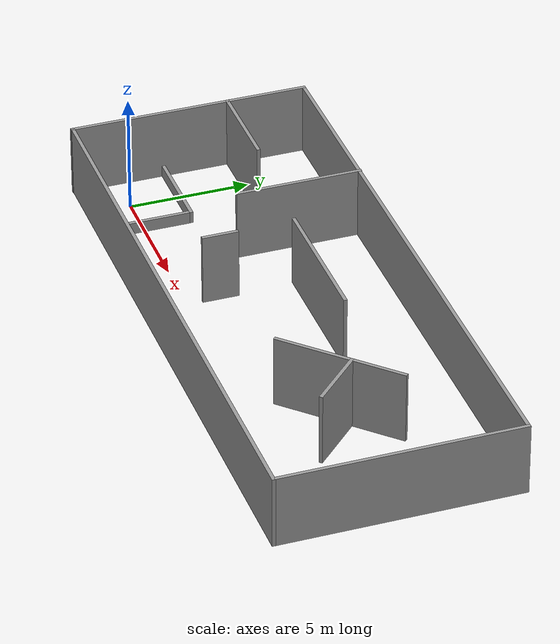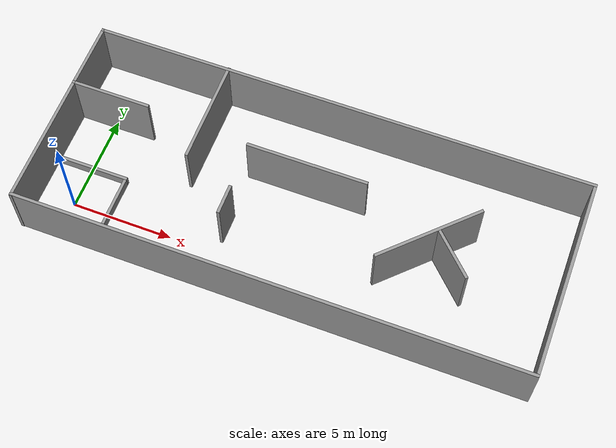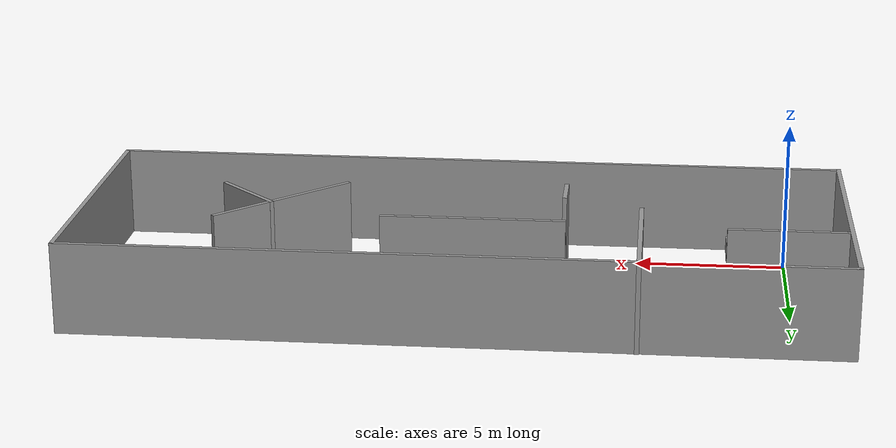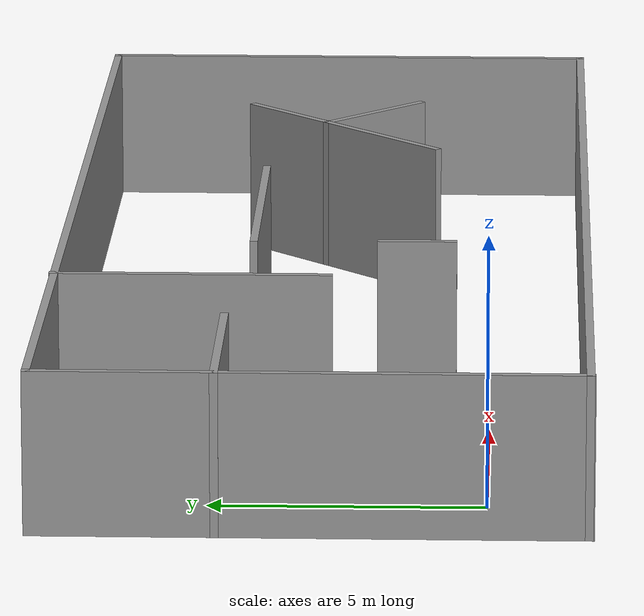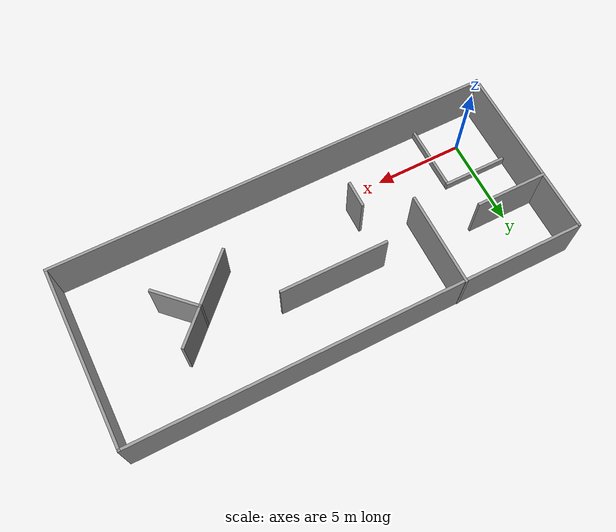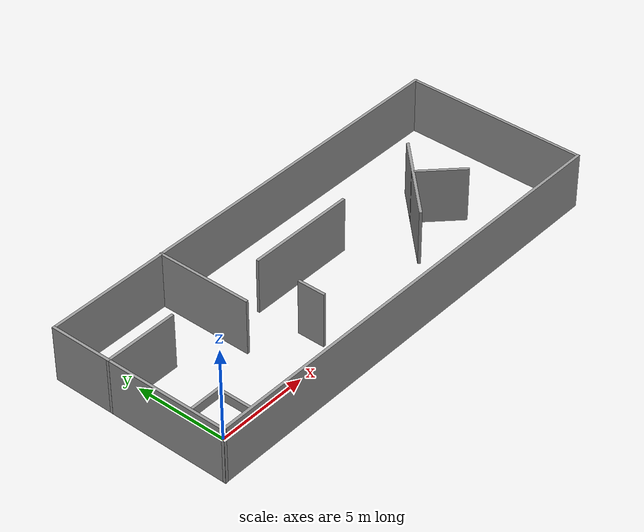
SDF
<?xml version='1.0'?>
<sdf version='1.6'>
  <model name='explore_map'>
    <pose frame=''>10.592 3.1325 0 0 -0 0</pose>
    <link name='Wall_26'>
      <collision name='Wall_26_Collision'>
        <geometry>
          <box>
            <size>10.018 0.15 3</size>
          </box>
        </geometry>
        <pose frame=''>0 0 1.5 0 -0 0</pose>
      </collision>
      <visual name='Wall_26_Visual'>
        <pose frame=''>0 0 1.5 0 -0 0</pose>
        <geometry>
          <box>
            <size>10.018 0.15 3</size>
          </box>
        </geometry>
        <material>
          <script>
            <uri>file://media/materials/scripts/gazebo.material</uri>
            <name>Gazebo/Grey</name>
          </script>
          <ambient>1 1 1 1</ambient>
        </material>
        <meta>
          <layer>0</layer>
        </meta>
      </visual>
      <pose frame=''>-12.424 -0.012503 0 0 -0 1.5708</pose>
    </link>
    <link name='Wall_29'>
      <collision name='Wall_29_Collision'>
        <geometry>
          <box>
            <size>25 0.15 3</size>
          </box>
        </geometry>
        <pose frame=''>0 0 1.5 0 -0 0</pose>
      </collision>
      <visual name='Wall_29_Visual'>
        <pose frame=''>0 0 1.5 0 -0 0</pose>
        <geometry>
          <box>
            <size>25 0.15 3</size>
          </box>
        </geometry>
        <material>
          <script>
            <uri>file://media/materials/scripts/gazebo.material</uri>
            <name>Gazebo/Grey</name>
          </script>
          <ambient>1 1 1 1</ambient>
        </material>
        <meta>
          <layer>0</layer>
        </meta>
      </visual>
      <pose frame=''>0.001 4.9215 0 0 -0 0</pose>
    </link>
    <link name='Wall_31'>
      <collision name='Wall_31_Collision'>
        <geometry>
          <box>
            <size>10 0.15 3</size>
          </box>
        </geometry>
        <pose frame=''>0 0 1.5 0 -0 0</pose>
      </collision>
      <visual name='Wall_31_Visual'>
        <pose frame=''>0 0 1.5 0 -0 0</pose>
        <geometry>
          <box>
            <size>10 0.15 3</size>
          </box>
        </geometry>
        <material>
          <script>
            <uri>file://media/materials/scripts/gazebo.material</uri>
            <name>Gazebo/Grey</name>
          </script>
          <ambient>1 1 1 1</ambient>
        </material>
        <meta>
          <layer>0</layer>
        </meta>
      </visual>
      <pose frame=''>12.426 -0.003503 0 0 -0 -1.5708</pose>
    </link>
    <link name='Wall_32'>
      <collision name='Wall_32_Collision'>
        <geometry>
          <box>
            <size>25 0.15 3</size>
          </box>
        </geometry>
        <pose frame=''>0 0 1.5 0 -0 0</pose>
      </collision>
      <visual name='Wall_32_Visual'>
        <pose frame=''>0 0 1.5 0 -0 0</pose>
        <geometry>
          <box>
            <size>25 0.15 3</size>
          </box>
        </geometry>
        <material>
          <script>
            <uri>file://media/materials/scripts/gazebo.material</uri>
            <name>Gazebo/Grey</name>
          </script>
          <ambient>1 1 1 1</ambient>
        </material>
        <meta>
          <layer>0</layer>
        </meta>
      </visual>
      <pose frame=''>0.001 -4.9285 0 0 -0 3.14159</pose>
    </link>
    <link name='Wall_35'>
      <collision name='Wall_35_Collision'>
        <geometry>
          <box>
            <size>3.75 0.15 0.5</size>
          </box>
        </geometry>
        <pose frame=''>0 0 0.25 0 -0 0</pose>
      </collision>
      <visual name='Wall_35_Visual'>
        <pose frame=''>0 0 0.25 0 -0 0</pose>
        <geometry>
          <box>
            <size>3.75 0.15 0.5</size>
          </box>
        </geometry>
        <material>
          <script>
            <uri>file://media/materials/scripts/gazebo.material</uri>
            <name>Gazebo/Grey</name>
          </script>
          <ambient>1 1 1 1</ambient>
        </material>
        <meta>
          <layer>0</layer>
        </meta>
      </visual>
      <pose frame=''>-10.556 -1.1605 0 0 -0 3.14159</pose>
    </link>
    <link name='Wall_39'>
      <collision name='Wall_39_Collision'>
        <geometry>
          <box>
            <size>3.75 0.15 0.5</size>
          </box>
        </geometry>
        <pose frame=''>0 0 0.25 0 -0 0</pose>
      </collision>
      <visual name='Wall_39_Visual'>
        <pose frame=''>0 0 0.25 0 -0 0</pose>
        <geometry>
          <box>
            <size>3.75 0.15 0.5</size>
          </box>
        </geometry>
        <material>
          <script>
            <uri>file://media/materials/scripts/gazebo.material</uri>
            <name>Gazebo/Grey</name>
          </script>
          <ambient>1 1 1 1</ambient>
        </material>
        <meta>
          <layer>0</layer>
        </meta>
      </visual>
      <pose frame=''>-8.75 -3.1085 0 0 -0 1.5708</pose>
    </link>
    <link name='Wall_41'>
      <collision name='Wall_41_Collision'>
        <geometry>
          <box>
            <size>4 0.15 3</size>
          </box>
        </geometry>
        <pose frame=''>0 0 1.5 0 -0 0</pose>
      </collision>
      <visual name='Wall_41_Visual'>
        <pose frame=''>0 0 1.5 0 -0 0</pose>
        <geometry>
          <box>
            <size>4 0.15 3</size>
          </box>
        </geometry>
        <material>
          <script>
            <uri>file://media/materials/scripts/gazebo.material</uri>
            <name>Gazebo/Grey</name>
          </script>
          <ambient>1 1 1 1</ambient>
        </material>
        <meta>
          <layer>0</layer>
        </meta>
      </visual>
      <pose frame=''>-10.501 1.6385 0 0 -0 0</pose>
    </link>
    <link name='Wall_43'>
      <collision name='Wall_43_Collision'>
        <geometry>
          <box>
            <size>5.25 0.15 3</size>
          </box>
        </geometry>
        <pose frame=''>0 0 1.5 0 -0 0</pose>
      </collision>
      <visual name='Wall_43_Visual'>
        <pose frame=''>0 0 1.5 0 -0 0</pose>
        <geometry>
          <box>
            <size>5.25 0.15 3</size>
          </box>
        </geometry>
        <material>
          <script>
            <uri>file://media/materials/scripts/gazebo.material</uri>
            <name>Gazebo/Grey</name>
          </script>
          <ambient>1 1 1 1</ambient>
        </material>
        <meta>
          <layer>0</layer>
        </meta>
      </visual>
      <pose frame=''>-5.765 2.3965 0 0 -0 -1.5708</pose>
    </link>
    <link name='Wall_45'>
      <collision name='Wall_45_Collision'>
        <geometry>
          <box>
            <size>1.5 0.15 3</size>
          </box>
        </geometry>
        <pose frame=''>0 0 1.5 0 -0 0</pose>
      </collision>
      <visual name='Wall_45_Visual'>
        <pose frame=''>0 0 1.5 0 -0 0</pose>
        <geometry>
          <box>
            <size>1.5 0.15 3</size>
          </box>
        </geometry>
        <material>
          <script>
            <uri>file://media/materials/scripts/gazebo.material</uri>
            <name>Gazebo/Grey</name>
          </script>
          <ambient>1 1 1 1</ambient>
        </material>
        <meta>
          <layer>0</layer>
        </meta>
      </visual>
      <pose frame=''>-3.22 -1.7425 0 0 -0 -1.5708</pose>
    </link>
    <link name='Wall_47'>
      <collision name='Wall_47_Collision'>
        <geometry>
          <box>
            <size>6 0.15 3</size>
          </box>
        </geometry>
        <pose frame=''>0 0 1.5 0 -0 0</pose>
      </collision>
      <visual name='Wall_47_Visual'>
        <pose frame=''>0 0 1.5 0 -0 0</pose>
        <geometry>
          <box>
            <size>6 0.15 3</size>
          </box>
        </geometry>
        <material>
          <script>
            <uri>file://media/materials/scripts/gazebo.material</uri>
            <name>Gazebo/Grey</name>
          </script>
          <ambient>1 1 1 1</ambient>
        </material>
        <meta>
          <layer>0</layer>
        </meta>
      </visual>
      <pose frame=''>-0.365 1.3375 0 0 -0 0</pose>
    </link>
    <link name='Wall_49'>
      <collision name='Wall_49_Collision'>
        <geometry>
          <box>
            <size>5.5 0.15 3</size>
          </box>
        </geometry>
        <pose frame=''>0 0 1.5 0 -0 0</pose>
      </collision>
      <visual name='Wall_49_Visual'>
        <pose frame=''>0 0 1.5 0 -0 0</pose>
        <geometry>
          <box>
            <size>5.5 0.15 3</size>
          </box>
        </geometry>
        <material>
          <script>
            <uri>file://media/materials/scripts/gazebo.material</uri>
            <name>Gazebo/Grey</name>
          </script>
          <ambient>1 1 1 1</ambient>
        </material>
        <meta>
          <layer>0</layer>
        </meta>
      </visual>
      <pose frame=''>6.0535 -0.090003 0 0 -0 0.785398</pose>
    </link>
    <link name='Wall_52'>
      <collision name='Wall_52_Collision'>
        <geometry>
          <box>
            <size>2.75 0.15 3</size>
          </box>
        </geometry>
        <pose frame=''>0 0 1.5 0 -0 0</pose>
      </collision>
      <visual name='Wall_52_Visual'>
        <pose frame=''>0 0 1.5 0 -0 0</pose>
        <geometry>
          <box>
            <size>2.75 0.15 3</size>
          </box>
        </geometry>
        <material>
          <script>
            <uri>file://media/materials/scripts/gazebo.material</uri>
            <name>Gazebo/Grey</name>
          </script>
          <ambient>1 1 1 1</ambient>
        </material>
        <meta>
          <layer>0</layer>
        </meta>
      </visual>
      <pose frame=''>7.306 -0.675503 0 0 -0 -0.785398</pose>
    </link>
    <static>1</static>
  </model>
</sdf>
